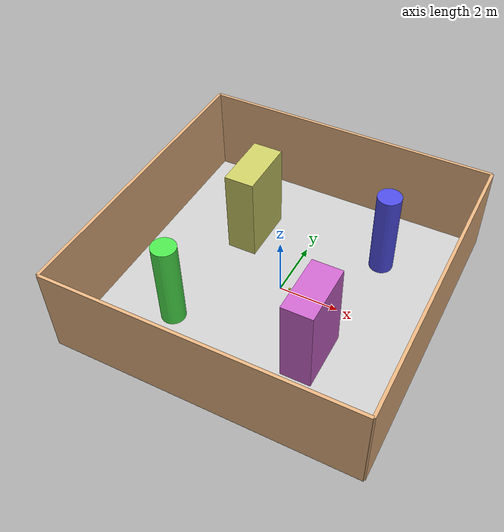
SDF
<?xml version="1.0" ?>
<sdf version="1.7">
  <world name="room_world">
    <gravity>0 0 -9.8</gravity>

    <!--简单房间环境，四面墙+2圆柱+2内部墙体-->

    <!-- 环境光和方向光，确保场景可见 -->
    <scene>
      <ambient>0.4 0.4 0.4 1</ambient>
    </scene>
    <light type="directional" name="sun">
      <cast_shadows>true</cast_shadows>
      <direction>-0.5 0.5 -1</direction>
      <diffuse>1 1 1 1</diffuse>
      <specular>0.1 0.1 0.1 1</specular>
    </light>

    <!-- 房间模型（包含地板、墙体和障碍物） -->
    <model name="enclosed_room">
      <static>true</static>

      <link name="floor">
        <collision name="floor_collision">
          <geometry>
            <box>
              <size>10 10 0.1</size>
            </box>
          </geometry>
        </collision>
        <visual name="floor_visual">
          <geometry>
            <box>
              <size>10 10 0.1</size>
            </box>
          </geometry>
          <material>
            <ambient>0.7 0.7 0.7 1</ambient>
            <diffuse>0.8 0.8 0.8 1</diffuse>
          </material>
        </visual>
        <!-- 顶面大约在 z=0，机器人 spawn 的 z=0.3 会落到地板上 -->
        <pose>0 0 -0.05 0 0 0</pose>
      </link>

      <!-- 北墙 (正Y方向) -->
      <link name="north_wall">
        <collision name="north_wall_collision">
          <geometry>
            <box>
              <size>10 0.1 3</size>
            </box>
          </geometry>
        </collision>
        <visual name="north_wall_visual">
          <geometry>
            <box>
              <size>10 0.1 3</size>
            </box>
          </geometry>
          <material>
            <ambient>0.9 0.6 0.4 1</ambient>
            <diffuse>0.9 0.7 0.5 1</diffuse>
          </material>
        </visual>
        <pose>0 5 1.5 0 0 0</pose>
      </link>

      <!-- 南墙 (负Y方向) -->
      <link name="south_wall">
        <collision name="south_wall_collision">
          <geometry>
            <box>
              <size>10 0.1 3</size>
            </box>
          </geometry>
        </collision>
        <visual name="south_wall_visual">
          <geometry>
            <box>
              <size>10 0.1 3</size>
            </box>
          </geometry>
          <material>
            <ambient>0.9 0.6 0.4 1</ambient>
            <diffuse>0.9 0.7 0.5 1</diffuse>
          </material>
        </visual>
        <pose>0 -5 1.5 0 0 0</pose>
      </link>

      <!-- 东墙 (正X方向) -->
      <link name="east_wall">
        <collision name="east_wall_collision">
          <geometry>
            <box>
              <size>0.1 10 3</size>
            </box>
          </geometry>
        </collision>
        <visual name="east_wall_visual">
          <geometry>
            <box>
              <size>0.1 10 3</size>
            </box>
          </geometry>
          <material>
            <ambient>0.9 0.6 0.4 1</ambient>
            <diffuse>0.9 0.7 0.5 1</diffuse>
          </material>
        </visual>
        <pose>5 0 1.5 0 0 0</pose>
      </link>

      <!-- 西墙 (负X方向) -->
      <link name="west_wall">
        <collision name="west_wall_collision">
          <geometry>
            <box>
              <size>0.1 10 3</size>
            </box>
          </geometry>
        </collision>
        <visual name="west_wall_visual">
          <geometry>
            <box>
              <size>0.1 10 3</size>
            </box>
          </geometry>
          <material>
            <ambient>0.9 0.6 0.4 1</ambient>
            <diffuse>0.9 0.7 0.5 1</diffuse>
          </material>
        </visual>
        <pose>-5 0 1.5 0 0 0</pose>
      </link>

      <!-- 圆柱体 1：靠近东北角但不贴墙 -->
      <link name="cylinder_1">
        <collision name="cylinder_1_collision">
          <geometry>
            <cylinder>
              <radius>0.4</radius>
              <length>3</length>
            </cylinder>
          </geometry>
        </collision>
        <visual name="cylinder_1_visual">
          <geometry>
            <cylinder>
              <radius>0.4</radius>
              <length>3</length>
            </cylinder>
          </geometry>
          <material>
            <ambient>0.2 0.2 0.8 1</ambient>
            <diffuse>0.3 0.3 0.9 1</diffuse>
          </material>
        </visual>
        <!-- 放在房间东北区域，距离墙体约 1 m，高度与墙一致 -->
        <pose>2.5 2.5 1.5 0 0 0</pose>
      </link>

      <!-- 圆柱体 2：靠近西南角但不贴墙 -->
      <link name="cylinder_2">
        <collision name="cylinder_2_collision">
          <geometry>
            <cylinder>
              <radius>0.4</radius>
              <length>3</length>
            </cylinder>
          </geometry>
        </collision>
        <visual name="cylinder_2_visual">
          <geometry>
            <cylinder>
              <radius>0.4</radius>
              <length>3</length>
            </cylinder>
          </geometry>
          <material>
            <ambient>0.2 0.8 0.2 1</ambient>
            <diffuse>0.3 0.9 0.3 1</diffuse>
          </material>
        </visual>
        <!-- 放在房间西南区域，距离墙体约 1 m，高度与墙一致 -->
        <pose>-2.5 -2.5 1.5 0 0 0</pose>
      </link>

      <!-- 内部墙体 1：沿 X 方向，长度超过房间宽度一半，但两侧留有通道 -->
      <link name="inner_wall_1">
        <collision name="inner_wall_1_collision">
          <geometry>
            <box>
              <size>1 2 3</size>
            </box>
          </geometry>
        </collision>
        <visual name="inner_wall_1_visual">
          <geometry>
            <box>
              <size>1 2 3</size>
            </box>
          </geometry>
          <material>
            <ambient>0.7 0.7 0.3 0.8</ambient>
            <diffuse>0.8 0.8 0.4 1</diffuse>
          </material>
        </visual>
        <pose>-2 2 1.5 0 0 0</pose>
      </link>

      <!-- 内部墙体 2：沿 Y 方向，长度超过房间宽度一半，但上下留有通道 -->
      <link name="inner_wall_2">
        <collision name="inner_wall_2_collision">
          <geometry>
            <box>
              <size>1 2 3</size>
            </box>
          </geometry>
        </collision>
        <visual name="inner_wall_2_visual">
          <geometry>
            <box>
              <size>1 2 3</size>
            </box>
          </geometry>
          <material>
            <ambient>0.7 0.3 0.7 0.8</ambient>
            <diffuse>0.8 0.4 0.8 1</diffuse>
          </material>
        </visual>
        <!-- 位于房间左中部，Y 向长度为 6 (> 5)，上下各保留 2 m 以上通道 -->
        <pose>2.0 -2.0 1.5 0 0 0</pose>
      </link>

    </model>

    <!-- Pickable object for autonomous picking demo -->
    <!-- Positioned at 0.33m in front of robot spawn point (0,0) -->
    <model name="pickup_box">
      <pose>0.33 0 0.15 0 0 0</pose>
      <link name="link">
        <collision name="collision">
          <geometry>
            <box>
              <size>0.05 0.05 0.05</size>
            </box>
          </geometry>
        </collision>
        <visual name="visual">
          <geometry>
            <box>
              <size>0.05 0.05 0.05</size>
            </box>
          </geometry>
          <material>
            <ambient>1.0 0.8 0.0 1</ambient>
            <diffuse>1.0 0.9 0.0 1</diffuse>
          </material>
        </visual>
        <inertial>
          <mass>0.1</mass>
          <inertia>
            <ixx>0.0001</ixx>
            <iyy>0.0001</iyy>
            <izz>0.0001</izz>
          </inertia>
        </inertial>
      </link>
    </model>

  </world>
</sdf>
